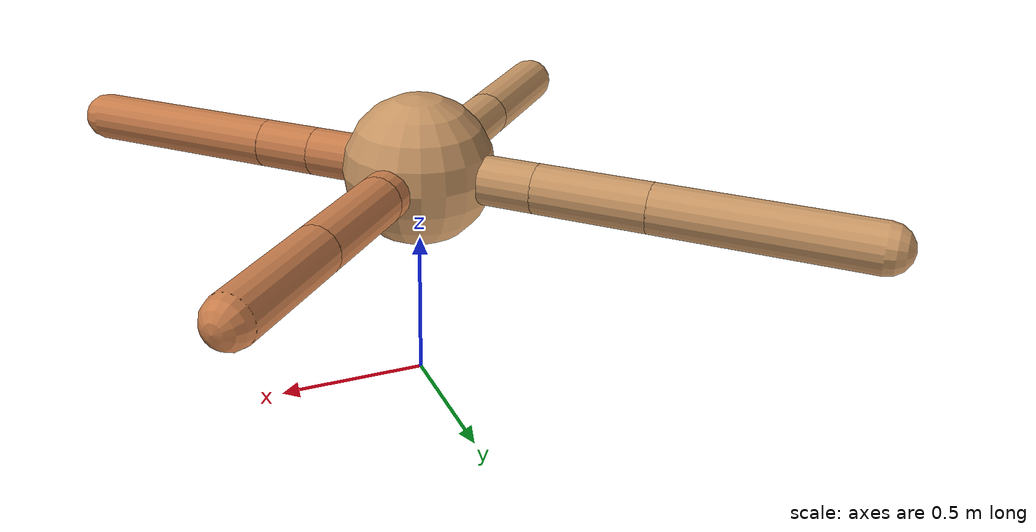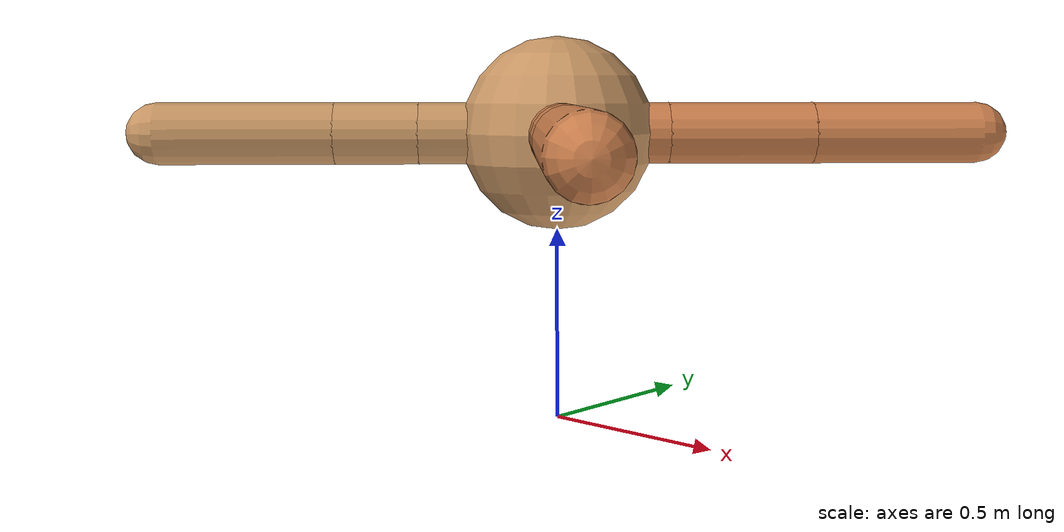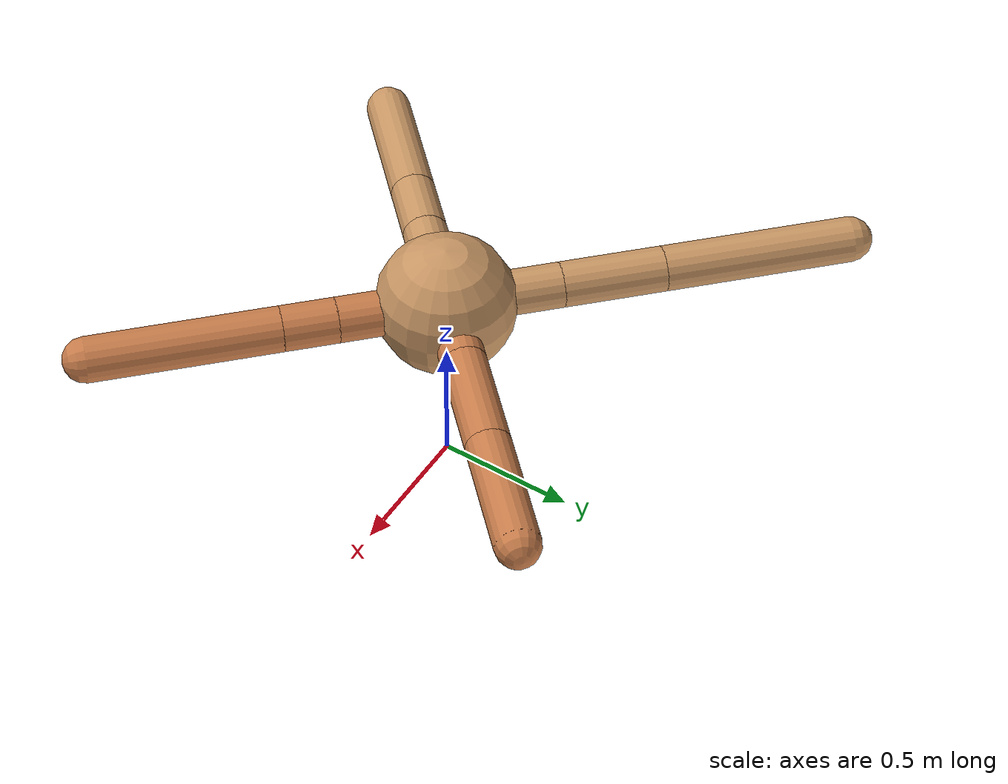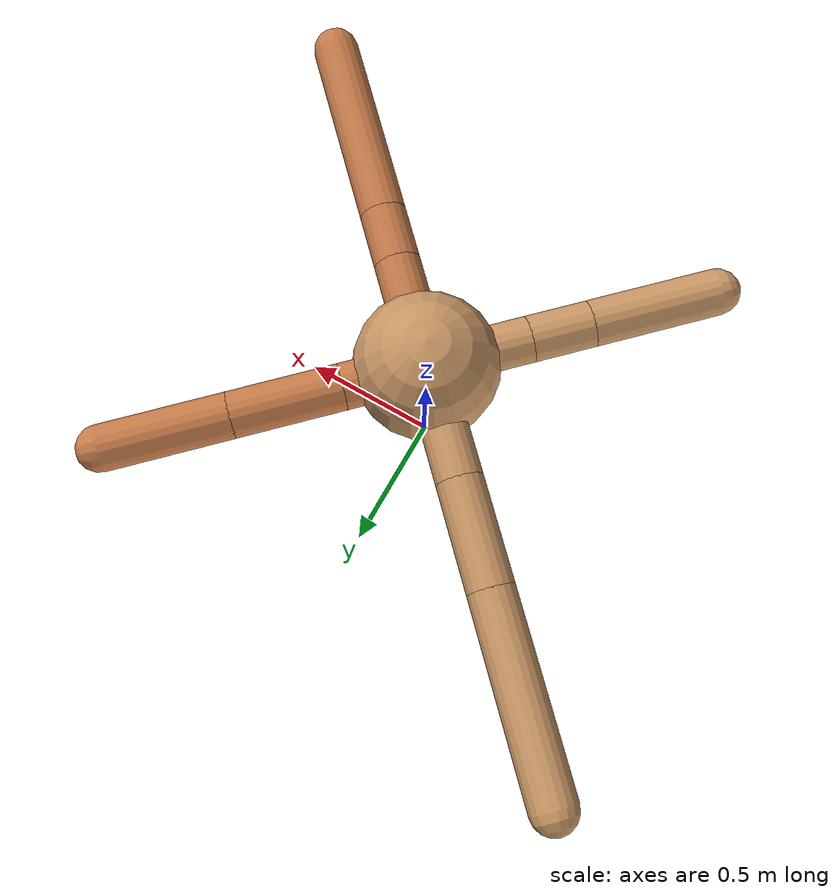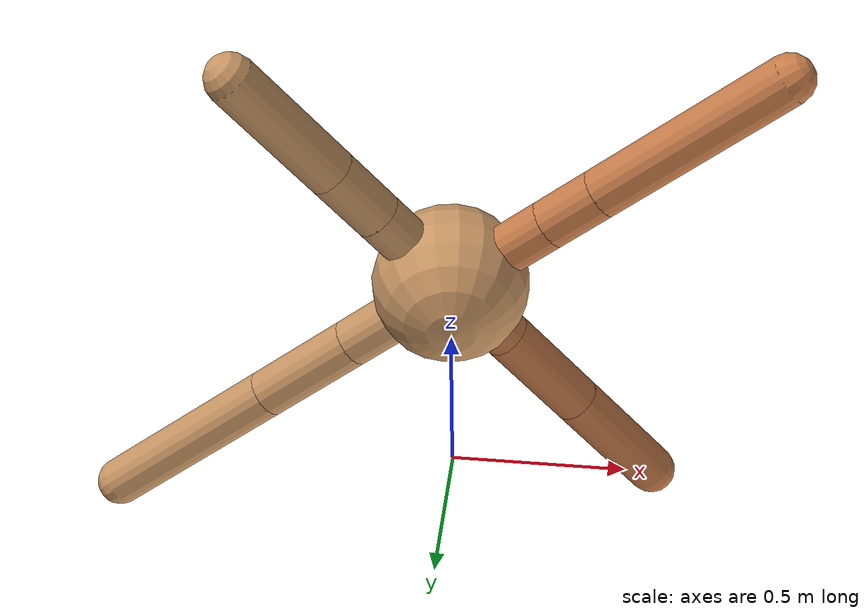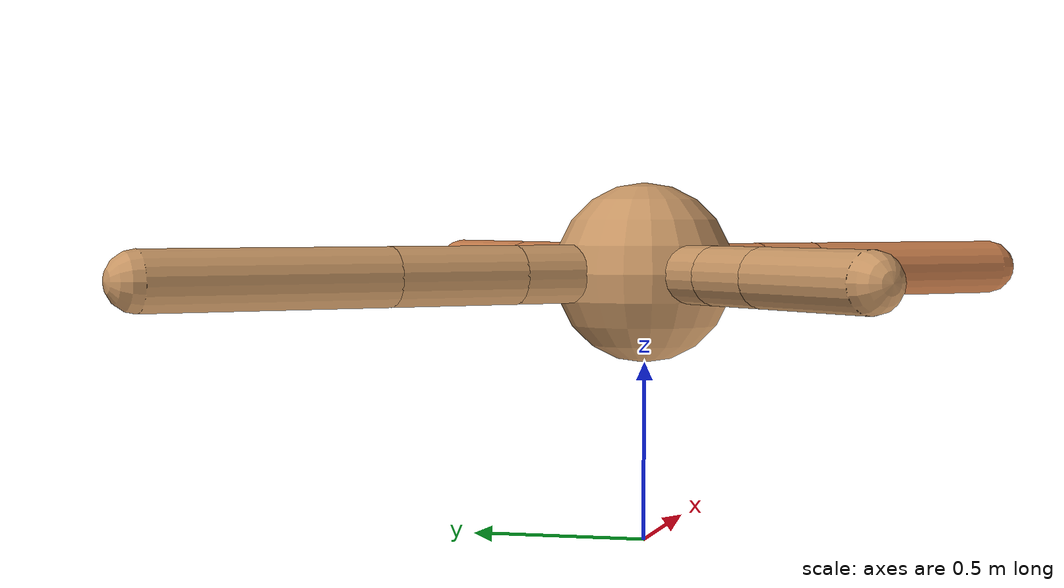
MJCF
<mujoco model="ant">
  <compiler angle="degree" coordinate="local" inertiafromgeom="true" />
  <option integrator="RK4" timestep="0.01" />
  <custom>
    <numeric data="0.0 0.0 0.55 1.0 0.0 0.0 0.0 0.0 1.0 0.0 -1.0 0.0 -1.0 0.0 1.0" name="init_qpos" />
  </custom>
  <default>
    <joint armature="1" damping="1" limited="true" />
    <geom conaffinity="0" condim="3" density="5.0" friction="1.5 0.1 0.1" margin="0.01" rgba="0.8 0.6 0.4 1" />
  </default>
  <worldbody>
    <body name="torso" pos="0 0 0.75">
      <geom name="torso_geom" pos="0 0 0" size="0.25" type="sphere" />

      <body name="front_left_leg" pos="0 0 0">
        <geom fromto="0.0 0.0 0.0 0.2040704529441873 0.2040704529441873 0.0" name="aux_1_geom" size="0.08" type="capsule" rgba=".8 .5 .3 1" />
        <body name="aux_1" pos="0.2040704529441873 0.2040704529441873 0.0">
          <joint axis="0 0 1" name="hip_1" pos="0.0 0.0 0.0" range="-40 40" type="hinge" />
          <geom fromto="0.0 0.0 0.0 0.26763755119365057 0.26763755119365057 0.0" name="left_leg_geom" size="0.08" type="capsule" rgba=".8 .5 .3 1" />
          <body pos="0.26763755119365057 0.26763755119365057 0.0" name="front_left_foot">
            <joint axis="-1 1 0" name="ankle_1" pos="0.0 0.0 0.0" range="30 100" type="hinge" />
            <geom fromto="0.0 0.0 0.0 0.30782708558332894 0.30782708558332894 0.0" name="left_ankle_geom" size="0.08" type="capsule" rgba=".8 .5 .3 1" />
          </body>
        </body>
      </body>
      <body name="front_right_leg" pos="0 0 0">
        <geom fromto="0.0 0.0 0.0 -0.2881134121151808 0.2881134121151808 0.0" name="aux_2_geom" size="0.08" type="capsule" />
        <body name="aux_2" pos="-0.2881134121151808 0.2881134121151808 0.0">
          <joint axis="0 0 1" name="hip_2" pos="0.0 0.0 0.0" range="-40 40" type="hinge" />
          <geom fromto="0.0 0.0 0.0 -0.2592407257318562 0.2592407257318562 0.0" name="right_leg_geom" size="0.08" type="capsule" />
          <body pos="-0.2592407257318562 0.2592407257318562 0.0" name="front_right_foot">
            <joint axis="1 1 0" name="ankle_2" pos="0.0 0.0 0.0" range="-100 -30" type="hinge" />
            <geom fromto="0.0 0.0 0.0 -0.48036874329406026 0.48036874329406026 0.0" name="right_ankle_geom" size="0.08" type="capsule" />
          </body>
        </body>
      </body>
      <body name="left_back_leg" pos="0 0 0">
        <geom fromto="0.0 0.0 0.0 -0.2522120242466704 -0.2522120242466704 0.0" name="aux_3_geom" size="0.08" type="capsule" />
        <body name="aux_3" pos="-0.2522120242466704 -0.2522120242466704 0.0">
          <joint axis="0 0 1" name="hip_3" pos="0.0 0.0 0.0" range="-40 40" type="hinge" />
          <geom fromto="0.0 0.0 0.0 -0.15163927479312536 -0.15163927479312536 0.0" name="back_leg_geom" size="0.08" type="capsule" />
          <body pos="-0.15163927479312536 -0.15163927479312536 0.0" name="left_back_foot">
            <joint axis="-1 1 0" name="ankle_3" pos="0.0 0.0 0.0" range="-100 -30" type="hinge" />
            <geom fromto="0.0 0.0 0.0 -0.31691560400477675 -0.31691560400477675 0.0" name="third_ankle_geom" size="0.08" type="capsule" />
          </body>
        </body>
      </body>
      <body name="right_back_leg" pos="0 0 0">
        <geom fromto="0.0 0.0 0.0 0.2708921706465689 -0.2708921706465689 0.0" name="aux_4_geom" size="0.08" type="capsule" rgba=".8 .5 .3 1" />
        <body name="aux_4" pos="0.2708921706465689 -0.2708921706465689 0.0">
          <joint axis="0 0 1" name="hip_4" pos="0.0 0.0 0.0" range="-40 40" type="hinge" />
          <geom fromto="0.0 0.0 0.0 0.1364899701325454 -0.1364899701325454 0.0" name="rightback_leg_geom" size="0.08" type="capsule" rgba=".8 .5 .3 1" />
          <body pos="0.1364899701325454 -0.1364899701325454 0.0" name="right_back_foot">
            <joint axis="1 1 0" name="ankle_4" pos="0.0 0.0 0.0" range="30 100" type="hinge" />
            <geom fromto="0.0 0.0 0.0 0.4767369679179764 -0.4767369679179764 0.0" name="fourth_ankle_geom" size="0.08" type="capsule" rgba=".8 .5 .3 1" />
          </body>
        </body>
      </body>
    </body>
  </worldbody>
  <actuator>
    <motor ctrllimited="true" ctrlrange="-1.0 1.0" joint="hip_4" gear="150" />
    <motor ctrllimited="true" ctrlrange="-1.0 1.0" joint="ankle_4" gear="150" />
    <motor ctrllimited="true" ctrlrange="-1.0 1.0" joint="hip_1" gear="150" />
    <motor ctrllimited="true" ctrlrange="-1.0 1.0" joint="ankle_1" gear="150" />
    <motor ctrllimited="true" ctrlrange="-1.0 1.0" joint="hip_2" gear="150" />
    <motor ctrllimited="true" ctrlrange="-1.0 1.0" joint="ankle_2" gear="150" />
    <motor ctrllimited="true" ctrlrange="-1.0 1.0" joint="hip_3" gear="150" />
    <motor ctrllimited="true" ctrlrange="-1.0 1.0" joint="ankle_3" gear="150" />
  </actuator>
</mujoco>
